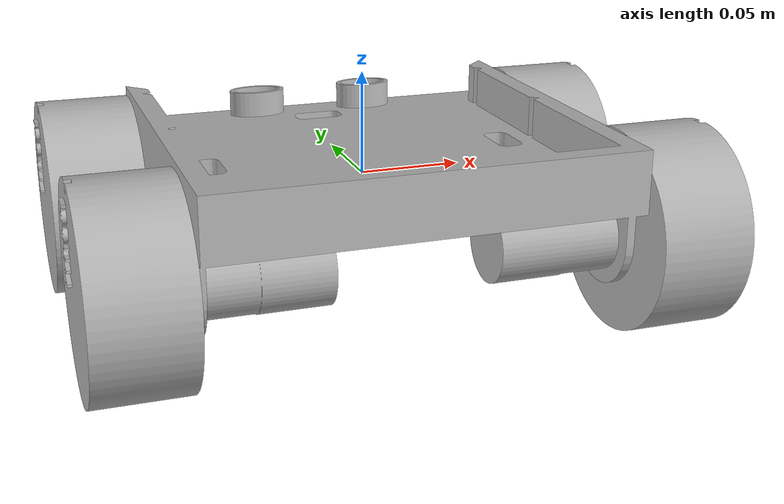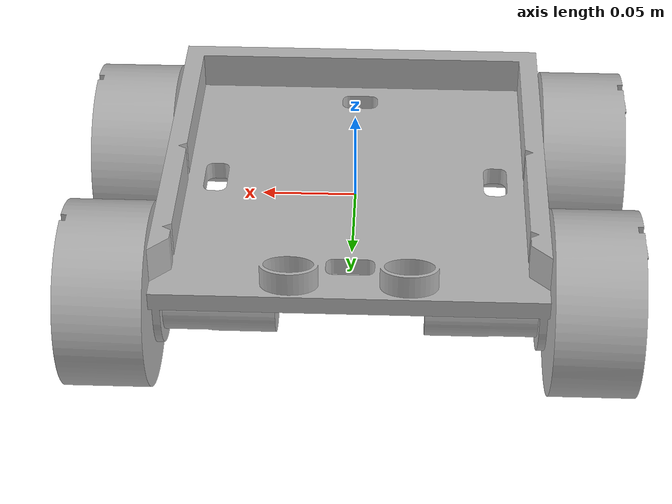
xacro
<?xml version="1.0"?>
<robot name="terrestrial_robot" xmlns:xacro="http://www.ros.org/wiki/xacro" >
    <xacro:arg name="simulation" default="false" />
    <xacro:arg name="ros2_control" default="false" /> <!--if true, load ros2 control resources-->

    <xacro:include filename="$(find terrestrial_robot_description)/urdf/terrestrial_robot.xacro" />
    <xacro:if value="$(arg simulation)">
        <xacro:include filename="$(find terrestrial_robot)/description/urdf/sim_mecanum_config.xacro" />
    </xacro:if>
    <xacro:unless value="$(arg simulation)">
        <xacro:include filename="$(find terrestrial_robot)/description/urdf/real_ros2_control_config.xacro" />
    </xacro:unless>

    <xacro:terrestrial_robot_ros2_control simulation="$(arg simulation)" fr_label="FrontRight" fl_label="FrontLeft" bl_label="BackLeft" br_label="BackRight" />

</robot>

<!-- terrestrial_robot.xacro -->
<robot name="terrestrial_robot" xmlns:xacro="http://www.ros.org/wiki/xacro">

<xacro:include filename="$(find terrestrial_robot_description)/urdf/materials.xacro" />
<xacro:include filename="$(find terrestrial_robot_description)/urdf/terrestrial_robot.trans" />
<xacro:include filename="$(find terrestrial_robot_description)/urdf/terrestrial_robot.gazebo" />
<link name="base_link">
  <inertial>
    <origin xyz="-5.183336997375715e-17 -0.007592361577329013 0.006868005732278094" rpy="0 0 0"/>
    <mass value="4.133882166278983"/>
    <inertia ixx="0.015635" iyy="0.018694" izz="0.033526" ixy="0.0" iyz="0.000385" ixz="-0.0"/>
  </inertial>
  <visual>
    <origin xyz="0 0 0" rpy="0 0 0"/>
    <geometry>
      <mesh filename="file://$(find terrestrial_robot_description)/meshes/base_link.stl" scale="0.001 0.001 0.001"/>
    </geometry>
    <material name="silver"/>
  </visual>
  <collision>
    <origin xyz="0 0 0" rpy="0 0 0"/>
    <geometry>
      <mesh filename="file://$(find terrestrial_robot_description)/meshes/base_link.stl" scale="0.001 0.001 0.001"/>
    </geometry>
  </collision>
</link>

<link name="MotorModel_BackLeft_1">
  <inertial>
    <origin xyz="0.02871297796531838 -2.7755575615628914e-17 -2.588679252936432e-07" rpy="0 0 0"/>
    <mass value="0.48529585489779975"/>
    <inertia ixx="8e-05" iyy="0.000182" izz="0.000182" ixy="0.0" iyz="-0.0" ixz="-0.0"/>
  </inertial>
  <visual>
    <origin xyz="0.096 0.065 0.0185" rpy="0 0 0"/>
    <geometry>
      <mesh filename="file://$(find terrestrial_robot_description)/meshes/MotorModel_BackLeft_1.stl" scale="0.001 0.001 0.001"/>
    </geometry>
    <material name="silver"/>
  </visual>
  <collision>
    <origin xyz="0.096 0.065 0.0185" rpy="0 0 0"/>
    <geometry>
      <mesh filename="file://$(find terrestrial_robot_description)/meshes/MotorModel_BackLeft_1.stl" scale="0.001 0.001 0.001"/>
    </geometry>
  </collision>
</link>

<link name="Wheel_BackLeft_1">
  <inertial>
    <origin xyz="-0.022503490882874108 3.597777147909542e-06 5.419452380719253e-06" rpy="0 0 0"/>
    <mass value="2.595058966151119"/>
    <inertia ixx="0.003063" iyy="0.001968" izz="0.001969" ixy="0.0" iyz="-0.0" ixz="0.0"/>
  </inertial>
  <visual>
    <origin xyz="0.102 0.065 0.0185" rpy="0 0 0"/>
    <geometry>
      <mesh filename="file://$(find terrestrial_robot_description)/meshes/Wheel_BackLeft_1.stl" scale="0.001 0.001 0.001"/>
    </geometry>
    <material name="silver"/>
  </visual>
  <collision>
    <origin xyz="0.102 0.065 0.0185" rpy="0 0 0"/>
    <geometry>
      <mesh filename="file://$(find terrestrial_robot_description)/meshes/Wheel_BackLeft_1.stl" scale="0.001 0.001 0.001"/>
    </geometry>
  </collision>
</link>

<link name="MotorModel_BackRight_1">
  <inertial>
    <origin xyz="-0.028712977965318395 1.3877787807814457e-17 -2.588679252936432e-07" rpy="0 0 0"/>
    <mass value="0.48529585489779975"/>
    <inertia ixx="8e-05" iyy="0.000182" izz="0.000182" ixy="0.0" iyz="0.0" ixz="0.0"/>
  </inertial>
  <visual>
    <origin xyz="-0.096 0.065 0.0185" rpy="0 0 0"/>
    <geometry>
      <mesh filename="file://$(find terrestrial_robot_description)/meshes/MotorModel_BackRight_1.stl" scale="0.001 0.001 0.001"/>
    </geometry>
    <material name="silver"/>
  </visual>
  <collision>
    <origin xyz="-0.096 0.065 0.0185" rpy="0 0 0"/>
    <geometry>
      <mesh filename="file://$(find terrestrial_robot_description)/meshes/MotorModel_BackRight_1.stl" scale="0.001 0.001 0.001"/>
    </geometry>
  </collision>
</link>

<link name="MotorModel_FrontLeft_1">
  <inertial>
    <origin xyz="0.02871297796531838 2.7755575615628914e-17 -2.588679252936432e-07" rpy="0 0 0"/>
    <mass value="0.48529585489779975"/>
    <inertia ixx="8e-05" iyy="0.000182" izz="0.000182" ixy="-0.0" iyz="0.0" ixz="-0.0"/>
  </inertial>
  <visual>
    <origin xyz="0.096 -0.065 0.0185" rpy="0 0 0"/>
    <geometry>
      <mesh filename="file://$(find terrestrial_robot_description)/meshes/MotorModel_FrontLeft_1.stl" scale="0.001 0.001 0.001"/>
    </geometry>
    <material name="silver"/>
  </visual>
  <collision>
    <origin xyz="0.096 -0.065 0.0185" rpy="0 0 0"/>
    <geometry>
      <mesh filename="file://$(find terrestrial_robot_description)/meshes/MotorModel_FrontLeft_1.stl" scale="0.001 0.001 0.001"/>
    </geometry>
  </collision>
</link>

<link name="MotorModel_FrontRight_1">
  <inertial>
    <origin xyz="-0.02871297796531845 6.938893903907228e-17 -2.588679252936432e-07" rpy="0 0 0"/>
    <mass value="0.48529585489779975"/>
    <inertia ixx="8e-05" iyy="0.000182" izz="0.000182" ixy="0.0" iyz="0.0" ixz="0.0"/>
  </inertial>
  <visual>
    <origin xyz="-0.096 -0.065 0.0185" rpy="0 0 0"/>
    <geometry>
      <mesh filename="file://$(find terrestrial_robot_description)/meshes/MotorModel_FrontRight_1.stl" scale="0.001 0.001 0.001"/>
    </geometry>
    <material name="silver"/>
  </visual>
  <collision>
    <origin xyz="-0.096 -0.065 0.0185" rpy="0 0 0"/>
    <geometry>
      <mesh filename="file://$(find terrestrial_robot_description)/meshes/MotorModel_FrontRight_1.stl" scale="0.001 0.001 0.001"/>
    </geometry>
  </collision>
</link>

<link name="Wheel_BackRight_1">
  <inertial>
    <origin xyz="0.022503490882874094 -3.5977771478956644e-06 5.419452380712314e-06" rpy="0 0 0"/>
    <mass value="2.595058966151119"/>
    <inertia ixx="0.003063" iyy="0.001968" izz="0.001969" ixy="0.0" iyz="0.0" ixz="-0.0"/>
  </inertial>
  <visual>
    <origin xyz="-0.102 0.065 0.0185" rpy="0 0 0"/>
    <geometry>
      <mesh filename="file://$(find terrestrial_robot_description)/meshes/Wheel_BackRight_1.stl" scale="0.001 0.001 0.001"/>
    </geometry>
    <material name="silver"/>
  </visual>
  <collision>
    <origin xyz="-0.102 0.065 0.0185" rpy="0 0 0"/>
    <geometry>
      <mesh filename="file://$(find terrestrial_robot_description)/meshes/Wheel_BackRight_1.stl" scale="0.001 0.001 0.001"/>
    </geometry>
  </collision>
</link>

<link name="Wheel_FrontRight_1">
  <inertial>
    <origin xyz="0.022503490882874108 -3.597777147854031e-06 5.419452380712314e-06" rpy="0 0 0"/>
    <mass value="2.595058966151119"/>
    <inertia ixx="0.003063" iyy="0.001968" izz="0.001969" ixy="0.0" iyz="0.0" ixz="-0.0"/>
  </inertial>
  <visual>
    <origin xyz="-0.102 -0.065 0.0185" rpy="0 0 0"/>
    <geometry>
      <mesh filename="file://$(find terrestrial_robot_description)/meshes/Wheel_FrontRight_1.stl" scale="0.001 0.001 0.001"/>
    </geometry>
    <material name="silver"/>
  </visual>
  <collision>
    <origin xyz="-0.102 -0.065 0.0185" rpy="0 0 0"/>
    <geometry>
      <mesh filename="file://$(find terrestrial_robot_description)/meshes/Wheel_FrontRight_1.stl" scale="0.001 0.001 0.001"/>
    </geometry>
  </collision>
</link>

<link name="Wheel_FrontLeft_1">
  <inertial>
    <origin xyz="-0.022503490882874094 3.5977771478956644e-06 5.419452380719253e-06" rpy="0 0 0"/>
    <mass value="2.595058966151119"/>
    <inertia ixx="0.003063" iyy="0.001968" izz="0.001969" ixy="0.0" iyz="-0.0" ixz="0.0"/>
  </inertial>
  <visual>
    <origin xyz="0.102 -0.065 0.0185" rpy="0 0 0"/>
    <geometry>
      <mesh filename="file://$(find terrestrial_robot_description)/meshes/Wheel_FrontLeft_1.stl" scale="0.001 0.001 0.001"/>
    </geometry>
    <material name="silver"/>
  </visual>
  <collision>
    <origin xyz="0.102 -0.065 0.0185" rpy="0 0 0"/>
    <geometry>
      <mesh filename="file://$(find terrestrial_robot_description)/meshes/Wheel_FrontLeft_1.stl" scale="0.001 0.001 0.001"/>
    </geometry>
  </collision>
</link>

<joint name="Rigid BL Motor" type="fixed">
  <origin xyz="-0.096 -0.065 -0.0185" rpy="0 0 0"/>
  <parent link="base_link"/>
  <child link="MotorModel_BackLeft_1"/>
</joint>

<joint name="Revolute BackLeft" type="continuous">
  <origin xyz="-0.006 0.0 0.0" rpy="0 0 0"/>
  <parent link="MotorModel_BackLeft_1"/>
  <child link="Wheel_BackLeft_1"/>
  <axis xyz="1.0 0.0 0.0"/>
</joint>

<joint name="Rigid BR Motor" type="fixed">
  <origin xyz="0.096 -0.065 -0.0185" rpy="0 0 0"/>
  <parent link="base_link"/>
  <child link="MotorModel_BackRight_1"/>
</joint>

<joint name="Rigid FL Motor" type="fixed">
  <origin xyz="-0.096 0.065 -0.0185" rpy="0 0 0"/>
  <parent link="base_link"/>
  <child link="MotorModel_FrontLeft_1"/>
</joint>

<joint name="Rigid FR Motor" type="fixed">
  <origin xyz="0.096 0.065 -0.0185" rpy="0 0 0"/>
  <parent link="base_link"/>
  <child link="MotorModel_FrontRight_1"/>
</joint>

<joint name="Revolute BackRight" type="continuous">
  <origin xyz="0.006 0.0 0.0" rpy="0 0 0"/>
  <parent link="MotorModel_BackRight_1"/>
  <child link="Wheel_BackRight_1"/>
  <axis xyz="-1.0 0.0 0.0"/>
</joint>

<joint name="Revolute FrontRight" type="continuous">
  <origin xyz="0.006 0.0 0.0" rpy="0 0 0"/>
  <parent link="MotorModel_FrontRight_1"/>
  <child link="Wheel_FrontRight_1"/>
  <axis xyz="-1.0 0.0 -0.0"/>
</joint>

<joint name="Revolute FrontLeft" type="continuous">
  <origin xyz="-0.006 0.0 0.0" rpy="0 0 0"/>
  <parent link="MotorModel_FrontLeft_1"/>
  <child link="Wheel_FrontLeft_1"/>
  <axis xyz="1.0 0.0 0.0"/>
</joint>

</robot>

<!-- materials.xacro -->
<robot name="terrestrial_robot" xmlns:xacro="http://www.ros.org/wiki/xacro" >

<material name="silver">
  <color rgba="0.700 0.700 0.700 1.000"/>
</material>

</robot>

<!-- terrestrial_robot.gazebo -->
<robot name="terrestrial_robot" xmlns:xacro="http://www.ros.org/wiki/xacro" >

<xacro:property name="body_color" value="Gazebo/Silver" />

<gazebo>
  <plugin name="control" filename="libgazebo_ros_control.so"/>
</gazebo>
<gazebo reference="base_link">
  <material>${body_color}</material>
  <mu1>0.2</mu1>
  <mu2>0.2</mu2>
  <self_collide>true</self_collide>
  <gravity>true</gravity>
</gazebo>

<gazebo reference="MotorModel_BackLeft_1">
  <material>${body_color}</material>
  <mu1>0.2</mu1>
  <mu2>0.2</mu2>
  <self_collide>true</self_collide>
</gazebo>

<gazebo reference="Wheel_BackLeft_1">
  <material>${body_color}</material>
  <mu1>0.2</mu1>
  <mu2>0.2</mu2>
  <self_collide>true</self_collide>
</gazebo>

<gazebo reference="MotorModel_BackRight_1">
  <material>${body_color}</material>
  <mu1>0.2</mu1>
  <mu2>0.2</mu2>
  <self_collide>true</self_collide>
</gazebo>

<gazebo reference="MotorModel_FrontLeft_1">
  <material>${body_color}</material>
  <mu1>0.2</mu1>
  <mu2>0.2</mu2>
  <self_collide>true</self_collide>
</gazebo>

<gazebo reference="MotorModel_FrontRight_1">
  <material>${body_color}</material>
  <mu1>0.2</mu1>
  <mu2>0.2</mu2>
  <self_collide>true</self_collide>
</gazebo>

<gazebo reference="Wheel_BackRight_1">
  <material>${body_color}</material>
  <mu1>0.2</mu1>
  <mu2>0.2</mu2>
  <self_collide>true</self_collide>
</gazebo>

<gazebo reference="Wheel_FrontRight_1">
  <material>${body_color}</material>
  <mu1>0.2</mu1>
  <mu2>0.2</mu2>
  <self_collide>true</self_collide>
</gazebo>

<gazebo reference="Wheel_FrontLeft_1">
  <material>${body_color}</material>
  <mu1>0.2</mu1>
  <mu2>0.2</mu2>
  <self_collide>true</self_collide>
</gazebo>

</robot>
